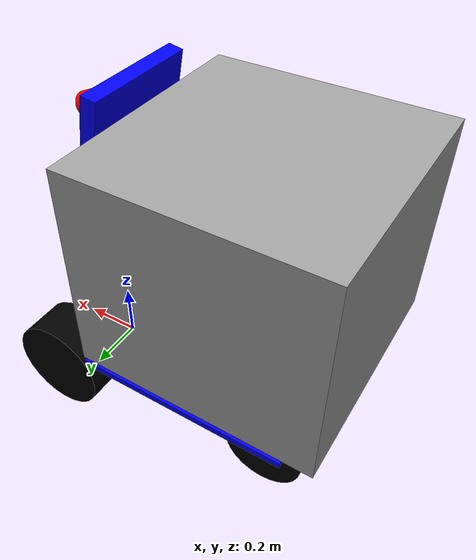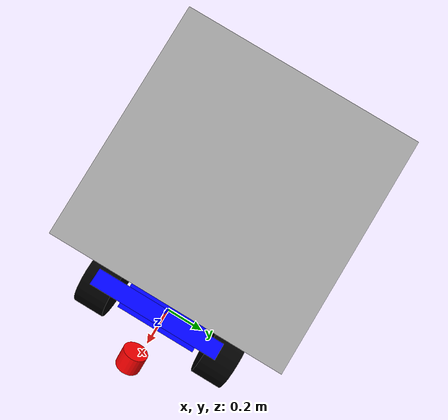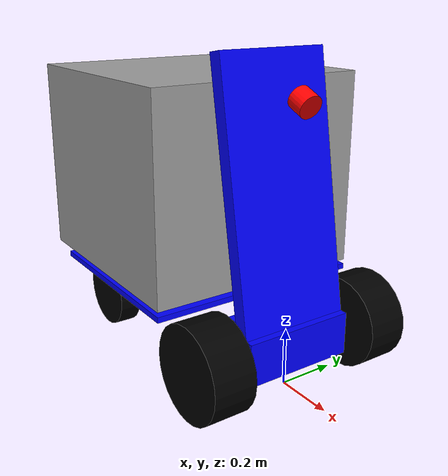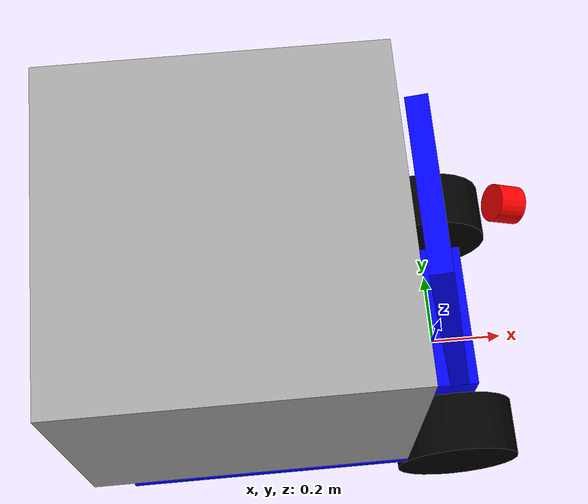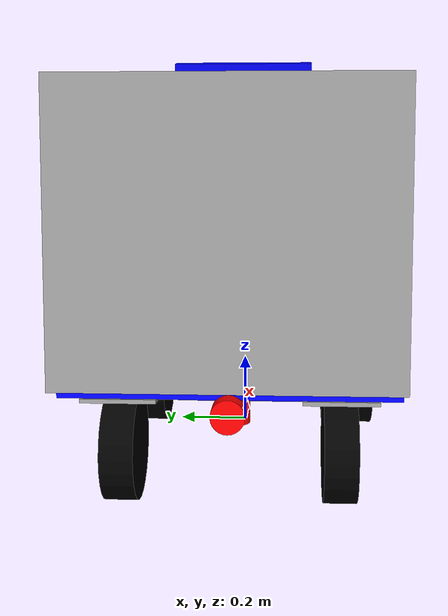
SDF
<sdf version='1.11'>
  <model name='mk5-200'>
    <link name='base_footprint'>
      <inertial>
        <pose>-0.01856834532374101 0 0.16712589928057561 0 0 0</pose>
        <mass>55.600000000000001</mass>
        <inertia>
          <ixx>0.32891811870503612</ixx>
          <ixy>0</ixy>
          <ixz>0.081474021582733869</ixz>
          <iyy>1.025726958992806</iyy>
          <iyz>0</iyz>
          <izz>0.95460884028776982</izz>
        </inertia>
      </inertial>
      <collision name='base_footprint_fixed_joint_lump__base_block_collision'>
        <pose>-0.025000000000000001 0 0.16200000000000001 0 0 0</pose>
        <geometry>
          <box>
            <size>0.20000000000000001 0.40000000000000002 0.14999999999999999</size>
          </box>
        </geometry>
      </collision>
      <collision name='base_footprint_fixed_joint_lump__airy_back_collision_1'>
        <pose>-0.87 0 0.247 0 -1.5707963267948966 0</pose>
        <geometry>
          <cylinder>
            <length>0.059999999999999998</length>
            <radius>0.040000000000000001</radius>
          </cylinder>
        </geometry>
      </collision>
      <collision name='base_footprint_fixed_joint_lump__airy_front_collision_2'>
        <pose>0.050000000000000003 0 0.96200000000000008 3.1415926535897931 1.1415926535897938 3.1415926535897931</pose>
        <geometry>
          <cylinder>
            <length>0.059999999999999998</length>
            <radius>0.040000000000000001</radius>
          </cylinder>
        </geometry>
      </collision>
      <collision name='base_footprint_fixed_joint_lump__base_box_collision_3'>
        <pose>-0.55000000000000004 0 0.66200000000000003 0 0 0</pose>
        <geometry>
          <box>
            <size>0.80000000000000004 0.80000000000000004 0.69999999999999996</size>
          </box>
        </geometry>
      </collision>
      <collision name='base_footprint_fixed_joint_lump__base_plate_collision_4'>
        <pose>-0.5 0 0.28499999999999998 0 0 0</pose>
        <geometry>
          <box>
            <size>0.69999999999999996 0.80000000000000004 0.02</size>
          </box>
        </geometry>
      </collision>
      <collision name='base_footprint_fixed_joint_lump__front_plate_collision_5'>
        <pose>-0.050000000000000003 0 0.66200000000000003 0 1.4000000000000004 0</pose>
        <geometry>
          <box>
            <size>0.90000000000000002 0.40000000000000002 0.049999999999999989</size>
          </box>
        </geometry>
      </collision>
      <collision name='base_footprint_fixed_joint_lump__jt16_center_collision_6'>
        <pose>-0.60699999999999998 0 0.187 3.1415926535897931 0.001592653589793114 3.1415926535897931</pose>
        <geometry>
          <cylinder>
            <length>0.059999999999999998</length>
            <radius>0.040000000000000001</radius>
          </cylinder>
        </geometry>
      </collision>
      <collision name='base_footprint_fixed_joint_lump__left_caster_plate_collision_7'>
        <pose>-0.747 0.26000000000000001 0.26500000000000001 0 0 0</pose>
        <geometry>
          <box>
            <size>0.17999999999999999 0.17999999999999999 0.01</size>
          </box>
        </geometry>
      </collision>
      <collision name='base_footprint_fixed_joint_lump__right_caster_plate_collision_8'>
        <pose>-0.747 -0.26000000000000001 0.26500000000000001 0 0 0</pose>
        <geometry>
          <box>
            <size>0.17999999999999999 0.17999999999999999 0.01</size>
          </box>
        </geometry>
      </collision>
      <visual name='base_footprint_fixed_joint_lump__base_block_visual'>
        <pose>-0.025000000000000001 0 0.16200000000000001 0 0 0</pose>
        <geometry>
          <box>
            <size>0.20000000000000001 0.40000000000000002 0.14999999999999999</size>
          </box>
        </geometry>
        <material>
          <diffuse>0 0 1 1</diffuse>
          <ambient>0 0 1 1</ambient>
        </material>
      </visual>
      <visual name='base_footprint_fixed_joint_lump__airy_back_visual_1'>
        <pose>-0.87 0 0.247 0 -1.5707963267948966 0</pose>
        <geometry>
          <cylinder>
            <length>0.059999999999999998</length>
            <radius>0.040000000000000001</radius>
          </cylinder>
        </geometry>
        <material>
          <diffuse>1 0 0 1</diffuse>
          <ambient>1 0 0 1</ambient>
        </material>
      </visual>
      <visual name='base_footprint_fixed_joint_lump__airy_front_visual_2'>
        <pose>0.050000000000000003 0 0.96200000000000008 3.1415926535897931 1.1415926535897938 3.1415926535897931</pose>
        <geometry>
          <cylinder>
            <length>0.059999999999999998</length>
            <radius>0.040000000000000001</radius>
          </cylinder>
        </geometry>
        <material>
          <diffuse>1 0 0 1</diffuse>
          <ambient>1 0 0 1</ambient>
        </material>
      </visual>
      <visual name='base_footprint_fixed_joint_lump__base_box_visual_3'>
        <pose>-0.55000000000000004 0 0.66200000000000003 0 0 0</pose>
        <geometry>
          <box>
            <size>0.80000000000000004 0.80000000000000004 0.69999999999999996</size>
          </box>
        </geometry>
        <material>
          <diffuse>0.625 0.625 0.625 1</diffuse>
          <ambient>0.625 0.625 0.625 1</ambient>
        </material>
      </visual>
      <visual name='base_footprint_fixed_joint_lump__base_plate_visual_4'>
        <pose>-0.5 0 0.28499999999999998 0 0 0</pose>
        <geometry>
          <box>
            <size>0.69999999999999996 0.80000000000000004 0.02</size>
          </box>
        </geometry>
        <material>
          <diffuse>0 0 1 1</diffuse>
          <ambient>0 0 1 1</ambient>
        </material>
      </visual>
      <visual name='base_footprint_fixed_joint_lump__front_plate_visual_5'>
        <pose>-0.050000000000000003 0 0.66200000000000003 0 1.4000000000000004 0</pose>
        <geometry>
          <box>
            <size>0.90000000000000002 0.40000000000000002 0.049999999999999989</size>
          </box>
        </geometry>
        <material>
          <diffuse>0 0 1 1</diffuse>
          <ambient>0 0 1 1</ambient>
        </material>
      </visual>
      <visual name='base_footprint_fixed_joint_lump__jt16_center_visual_6'>
        <pose>-0.60699999999999998 0 0.187 3.1415926535897931 0.001592653589793114 3.1415926535897931</pose>
        <geometry>
          <cylinder>
            <length>0.059999999999999998</length>
            <radius>0.040000000000000001</radius>
          </cylinder>
        </geometry>
        <material>
          <diffuse>1 0 0 1</diffuse>
          <ambient>1 0 0 1</ambient>
        </material>
      </visual>
      <visual name='base_footprint_fixed_joint_lump__left_caster_plate_visual_7'>
        <pose>-0.747 0.26000000000000001 0.26500000000000001 0 0 0</pose>
        <geometry>
          <box>
            <size>0.17999999999999999 0.17999999999999999 0.01</size>
          </box>
        </geometry>
        <material>
          <diffuse>0.625 0.625 0.625 1</diffuse>
          <ambient>0.625 0.625 0.625 1</ambient>
        </material>
      </visual>
      <visual name='base_footprint_fixed_joint_lump__right_caster_plate_visual_8'>
        <pose>-0.747 -0.26000000000000001 0.26500000000000001 0 0 0</pose>
        <geometry>
          <box>
            <size>0.17999999999999999 0.17999999999999999 0.01</size>
          </box>
        </geometry>
        <material>
          <diffuse>0.625 0.625 0.625 1</diffuse>
          <ambient>0.625 0.625 0.625 1</ambient>
        </material>
      </visual>
    </link>
    <joint name='left_caster_wheel_joint' type='revolute'>
      <pose relative_to='base_footprint'>-0.747 0.26000000000000001 0.13500000000000001 0 0 0</pose>
      <parent>base_footprint</parent>
      <child>left_caster_wheel</child>
      <axis>
        <xyz>0 1 0</xyz>
        <limit>
          <lower>-inf</lower>
          <upper>inf</upper>
        </limit>
        <dynamics>
          <spring_reference>0</spring_reference>
          <spring_stiffness>0</spring_stiffness>
        </dynamics>
      </axis>
    </joint>
    <link name='left_caster_wheel'>
      <pose relative_to='left_caster_wheel_joint'>0 0 0 0 0 0</pose>
      <inertial>
        <pose>0 0 0 0 0 0</pose>
        <mass>1</mass>
        <inertia>
          <ixx>0.0001</ixx>
          <ixy>0</ixy>
          <ixz>0</ixz>
          <iyy>0.0001</iyy>
          <iyz>0</iyz>
          <izz>0.0001</izz>
        </inertia>
      </inertial>
      <collision name='left_caster_wheel_collision'>
        <pose>0 0 0 1.5707959999999999 0 0</pose>
        <geometry>
          <cylinder>
            <length>0.080000000000000002</length>
            <radius>0.13</radius>
          </cylinder>
        </geometry>
      </collision>
      <visual name='left_caster_wheel_visual'>
        <pose>0 0 0 1.5707959999999999 0 0</pose>
        <geometry>
          <cylinder>
            <length>0.080000000000000002</length>
            <radius>0.13</radius>
          </cylinder>
        </geometry>
        <material>
          <diffuse>0 0 0 1</diffuse>
          <ambient>0 0 0 1</ambient>
        </material>
      </visual>
    </link>
    <joint name='left_wheel_joint' type='revolute'>
      <pose relative_to='base_footprint'>0 0.317 0.16200000000000001 0 0 0</pose>
      <parent>base_footprint</parent>
      <child>left_wheel</child>
      <axis>
        <xyz>0 1 0</xyz>
        <limit>
          <lower>-inf</lower>
          <upper>inf</upper>
        </limit>
        <dynamics>
          <spring_reference>0</spring_reference>
          <spring_stiffness>0</spring_stiffness>
        </dynamics>
      </axis>
    </joint>
    <link name='left_wheel'>
      <pose relative_to='left_wheel_joint'>0 0 0 0 0 0</pose>
      <inertial>
        <pose>0 0 0 0 0 0</pose>
        <mass>8</mass>
        <inertia>
          <ixx>0.01</ixx>
          <ixy>0</ixy>
          <ixz>0</ixz>
          <iyy>0.01</iyy>
          <iyz>0</iyz>
          <izz>0.01</izz>
        </inertia>
      </inertial>
      <collision name='left_wheel_collision'>
        <pose>0 0 0 1.5707959999999999 0 0</pose>
        <geometry>
          <cylinder>
            <length>0.14999999999999999</length>
            <radius>0.16200000000000001</radius>
          </cylinder>
        </geometry>
      </collision>
      <visual name='left_wheel_visual'>
        <pose>0 0 0 1.5707959999999999 0 0</pose>
        <geometry>
          <cylinder>
            <length>0.14999999999999999</length>
            <radius>0.16200000000000001</radius>
          </cylinder>
        </geometry>
        <material>
          <diffuse>0 0 0 1</diffuse>
          <ambient>0 0 0 1</ambient>
        </material>
      </visual>
    </link>
    <joint name='right_caster_wheel_joint' type='revolute'>
      <pose relative_to='base_footprint'>-0.747 -0.26000000000000001 0.13500000000000001 0 0 0</pose>
      <parent>base_footprint</parent>
      <child>right_caster_wheel</child>
      <axis>
        <xyz>0 1 0</xyz>
        <limit>
          <lower>-inf</lower>
          <upper>inf</upper>
        </limit>
        <dynamics>
          <spring_reference>0</spring_reference>
          <spring_stiffness>0</spring_stiffness>
        </dynamics>
      </axis>
    </joint>
    <link name='right_caster_wheel'>
      <pose relative_to='right_caster_wheel_joint'>0 0 0 0 0 0</pose>
      <inertial>
        <pose>0 0 0 0 0 0</pose>
        <mass>1</mass>
        <inertia>
          <ixx>0.0001</ixx>
          <ixy>0</ixy>
          <ixz>0</ixz>
          <iyy>0.0001</iyy>
          <iyz>0</iyz>
          <izz>0.0001</izz>
        </inertia>
      </inertial>
      <collision name='right_caster_wheel_collision'>
        <pose>0 0 0 1.5707959999999999 0 0</pose>
        <geometry>
          <cylinder>
            <length>0.080000000000000002</length>
            <radius>0.13</radius>
          </cylinder>
        </geometry>
      </collision>
      <visual name='right_caster_wheel_visual'>
        <pose>0 0 0 1.5707959999999999 0 0</pose>
        <geometry>
          <cylinder>
            <length>0.080000000000000002</length>
            <radius>0.13</radius>
          </cylinder>
        </geometry>
        <material>
          <diffuse>0 0 0 1</diffuse>
          <ambient>0 0 0 1</ambient>
        </material>
      </visual>
    </link>
    <joint name='right_wheel_joint' type='revolute'>
      <pose relative_to='base_footprint'>0 -0.317 0.16200000000000001 0 0 0</pose>
      <parent>base_footprint</parent>
      <child>right_wheel</child>
      <axis>
        <xyz>0 1 0</xyz>
        <limit>
          <lower>-inf</lower>
          <upper>inf</upper>
        </limit>
        <dynamics>
          <spring_reference>0</spring_reference>
          <spring_stiffness>0</spring_stiffness>
        </dynamics>
      </axis>
    </joint>
    <link name='right_wheel'>
      <pose relative_to='right_wheel_joint'>0 0 0 0 0 0</pose>
      <inertial>
        <pose>0 0 0 0 0 0</pose>
        <mass>8</mass>
        <inertia>
          <ixx>0.01</ixx>
          <ixy>0</ixy>
          <ixz>0</ixz>
          <iyy>0.01</iyy>
          <iyz>0</iyz>
          <izz>0.01</izz>
        </inertia>
      </inertial>
      <collision name='right_wheel_collision'>
        <pose>0 0 0 1.5707959999999999 0 0</pose>
        <geometry>
          <cylinder>
            <length>0.14999999999999999</length>
            <radius>0.16200000000000001</radius>
          </cylinder>
        </geometry>
      </collision>
      <visual name='right_wheel_visual'>
        <pose>0 0 0 1.5707959999999999 0 0</pose>
        <geometry>
          <cylinder>
            <length>0.14999999999999999</length>
            <radius>0.16200000000000001</radius>
          </cylinder>
        </geometry>
        <material>
          <diffuse>0 0 0 1</diffuse>
          <ambient>0 0 0 1</ambient>
        </material>
      </visual>
    </link>
    <frame name='airy_back_joint' attached_to='base_block'>
      <pose>-0.87 0 0.085000000000000006 0 -1.5700000000005452 0</pose>
    </frame>
    <frame name='airy_back' attached_to='airy_back_joint'>
      <pose>0 0 0 0 0 0</pose>
    </frame>
    <frame name='airy_front_joint' attached_to='base_block'>
      <pose>0.050000000000000003 0 0.80000000000000004 3.1415926535897931 1.1415926535897938 3.1415926535897931</pose>
    </frame>
    <frame name='airy_front' attached_to='airy_front_joint'>
      <pose>0 0 0 0 0 0</pose>
    </frame>
    <frame name='base_box_joint' attached_to='base_block'>
      <pose>0 0 0 0 0 0</pose>
    </frame>
    <frame name='base_box' attached_to='base_box_joint'>
      <pose>0 0 0 0 0 0</pose>
    </frame>
    <frame name='base_plate_joint' attached_to='base_block'>
      <pose>0 0 0 0 0 0</pose>
    </frame>
    <frame name='base_plate' attached_to='base_plate_joint'>
      <pose>0 0 0 0 0 0</pose>
    </frame>
    <frame name='front_plate_joint' attached_to='base_block'>
      <pose>0 0 0 0 0 0</pose>
    </frame>
    <frame name='front_plate' attached_to='front_plate_joint'>
      <pose>0 0 0 0 0 0</pose>
    </frame>
    <frame name='jt16_center_joint' attached_to='base_block'>
      <pose>-0.60699999999999998 0 0.025000000000000001 3.1415926535897931 0.001592653589793114 3.1415926535897931</pose>
    </frame>
    <frame name='jt16_center' attached_to='jt16_center_joint'>
      <pose>0 0 0 0 0 0</pose>
    </frame>
    <frame name='left_caster_plate_joint' attached_to='base_block'>
      <pose>-0.747 0.26000000000000001 0.10299999999999999 0 0 0</pose>
    </frame>
    <frame name='left_caster_plate' attached_to='left_caster_plate_joint'>
      <pose>0 0 0 0 0 0</pose>
    </frame>
    <frame name='right_caster_plate_joint' attached_to='base_block'>
      <pose>-0.747 -0.26000000000000001 0.10299999999999999 0 0 0</pose>
    </frame>
    <frame name='right_caster_plate' attached_to='right_caster_plate_joint'>
      <pose>0 0 0 0 0 0</pose>
    </frame>
    <frame name='base_block_joint' attached_to='base_footprint'>
      <pose>0 0 0.16200000000000001 0 0 0</pose>
    </frame>
    <frame name='base_block' attached_to='base_block_joint'>
      <pose>0 0 0 0 0 0</pose>
    </frame>
  </model>
</sdf>
